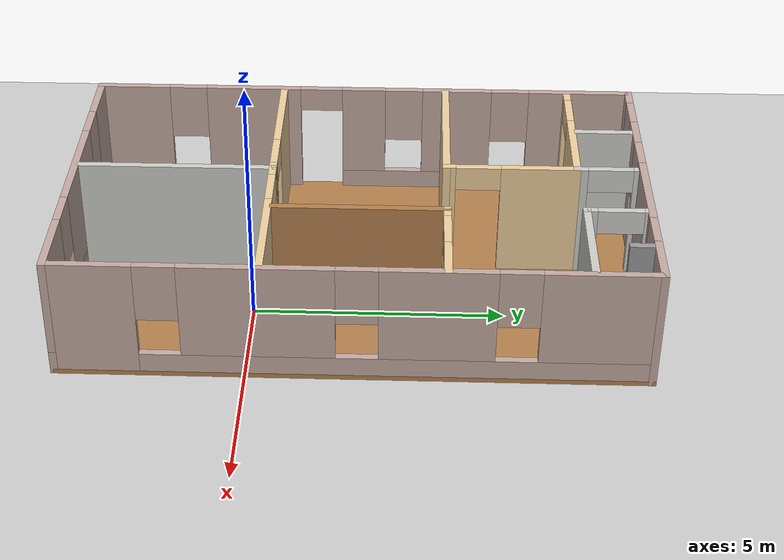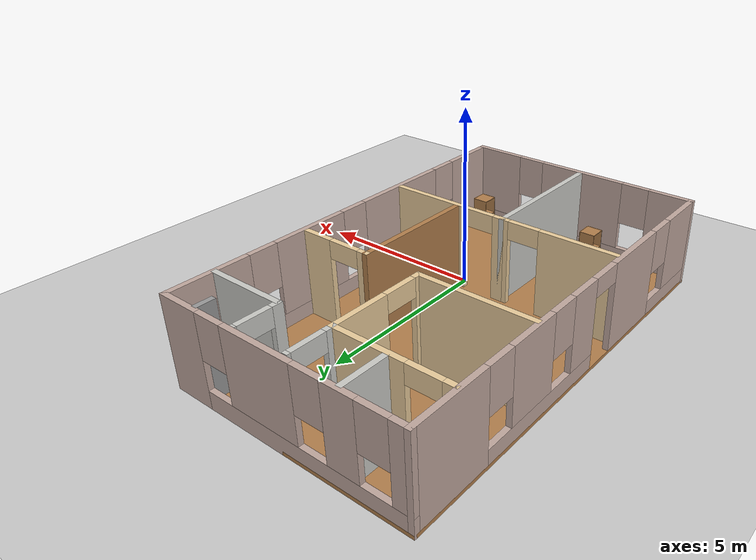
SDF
<sdf version="1.7">
 <world name="default">
  <model name="ground_plane">
   <static>1</static>
   <link name="link">
    <collision name="collision">
     <geometry><plane><normal>0 0 1</normal><size>100 100</size></plane></geometry>
     <surface>
      <contact><collide_bitmask>65535</collide_bitmask></contact>
      <friction><ode><mu>100</mu><mu2>50</mu2></ode></friction>
     </surface>
    </collision>
    <visual name="visual">
     <cast_shadows>0</cast_shadows>
     <geometry><plane><normal>0 0 1</normal><size>100 100</size></plane></geometry>
     <material>
      <script><uri>file://media/materials/scripts/gazebo.material</uri><name>Gazebo/Grey</name></script>
     </material>
    </visual>
   </link>
  </model>
  <model name="Building">
   <pose>4.53978 2.04826 0 0 -0 0</pose>
   <link name="Floor_1">
    <collision name="Floor_1_Collision">
     <geometry><box><size>7 11.5 0.1</size></box></geometry>
     <pose>0 0 0.05 0 -0 0</pose>
    </collision>
    <visual name="Floor_1_Visual">
     <pose>0 0 0.05 0 -0 0</pose>
     <geometry><box><size>7 11.5 0.1</size></box></geometry>
     <material>
      <script><uri>file://media/materials/scripts/gazebo.material</uri><name>Gazebo/Wood</name></script>
      <ambient>1 1 1 1</ambient>
     </material>
     <meta><layer>0</layer></meta>
    </visual>
    <pose>-5.89589 0 0 0 -0 0</pose>
   </link>
   <link name="Wall_21">
    <pose>-9.32067 -0.000135 0 0 -0 -1.5708</pose>
    <visual name="Wall_21_Visual_0">
     <pose>-4.651 0 1.25 0 -0 0</pose>
     <geometry><box><size>2.19799 0.15 2.5</size></box></geometry>
     <material>
      <script><uri>file://media/materials/scripts/gazebo.material</uri><name>Gazebo/Grey</name></script>
      <ambient>0.760784 0.662745 0.627451 1</ambient>
     </material>
     <meta><layer>0</layer></meta>
    </visual>
    <collision name="Wall_21_Collision_0">
     <geometry><box><size>2.19799 0.15 2.5</size></box></geometry>
     <pose>-4.651 0 1.25 0 -0 0</pose>
    </collision>
    <visual name="Wall_21_Visual_1">
     <pose>2.37299 0 1.25 0 -0 0</pose>
     <geometry><box><size>2.03 0.15 2.5</size></box></geometry>
     <material>
      <script><uri>file://media/materials/scripts/gazebo.material</uri><name>Gazebo/Grey</name></script>
      <ambient>0.760784 0.662745 0.627451 1</ambient>
     </material>
     <meta><layer>0</layer></meta>
    </visual>
    <collision name="Wall_21_Collision_1">
     <geometry><box><size>2.03 0.15 2.5</size></box></geometry>
     <pose>2.37299 0 1.25 0 -0 0</pose>
    </collision>
    <visual name="Wall_21_Visual_2">
     <pose>-1.54701 0 0.25 0 -0 0</pose>
     <geometry><box><size>4.01 0.15 0.5</size></box></geometry>
     <material>
      <script><uri>file://media/materials/scripts/gazebo.material</uri><name>Gazebo/Grey</name></script>
      <ambient>0.760784 0.662745 0.627451 1</ambient>
     </material>
     <meta><layer>0</layer></meta>
    </visual>
    <collision name="Wall_21_Collision_2">
     <geometry><box><size>4.01 0.15 0.5</size></box></geometry>
     <pose>-1.54701 0 0.25 0 -0 0</pose>
    </collision>
    <visual name="Wall_21_Visual_3">
     <pose>4.569 0 0.25 0 -0 0</pose>
     <geometry><box><size>2.36201 0.15 0.5</size></box></geometry>
     <material>
      <script><uri>file://media/materials/scripts/gazebo.material</uri><name>Gazebo/Grey</name></script>
      <ambient>0.760784 0.662745 0.627451 1</ambient>
     </material>
     <meta><layer>0</layer></meta>
    </visual>
    <collision name="Wall_21_Collision_3">
     <geometry><box><size>2.36201 0.15 0.5</size></box></geometry>
     <pose>4.569 0 0.25 0 -0 0</pose>
    </collision>
    <visual name="Wall_21_Visual_4">
     <pose>-2.01201 0 1.5 0 -0 0</pose>
     <geometry><box><size>1.48 0.15 2</size></box></geometry>
     <material>
      <script><uri>file://media/materials/scripts/gazebo.material</uri><name>Gazebo/Grey</name></script>
      <ambient>0.760784 0.662745 0.627451 1</ambient>
     </material>
     <meta><layer>0</layer></meta>
    </visual>
    <collision name="Wall_21_Collision_4">
     <geometry><box><size>1.48 0.15 2</size></box></geometry>
     <pose>-2.01201 0 1.5 0 -0 0</pose>
    </collision>
    <visual name="Wall_21_Visual_5">
     <pose>-0.007008 0 1.5 0 -0 0</pose>
     <geometry><box><size>0.93 0.15 2</size></box></geometry>
     <material>
      <script><uri>file://media/materials/scripts/gazebo.material</uri><name>Gazebo/Grey</name></script>
      <ambient>0.760784 0.662745 0.627451 1</ambient>
     </material>
     <meta><layer>0</layer></meta>
    </visual>
    <collision name="Wall_21_Collision_5">
     <geometry><box><size>0.93 0.15 2</size></box></geometry>
     <pose>-0.007008 0 1.5 0 -0 0</pose>
    </collision>
    <visual name="Wall_21_Visual_6">
     <pose>-0.007008 0 1.5 0 -0 0</pose>
     <geometry><box><size>0.93 0.15 2</size></box></geometry>
     <material>
      <script><uri>file://media/materials/scripts/gazebo.material</uri><name>Gazebo/Grey</name></script>
      <ambient>0.760784 0.662745 0.627451 1</ambient>
     </material>
     <meta><layer>0</layer></meta>
    </visual>
    <collision name="Wall_21_Collision_6">
     <geometry><box><size>0.93 0.15 2</size></box></geometry>
     <pose>-0.007008 0 1.5 0 -0 0</pose>
    </collision>
    <visual name="Wall_21_Visual_7">
     <pose>4.969 0 1.5 0 -0 0</pose>
     <geometry><box><size>1.56201 0.15 2</size></box></geometry>
     <material>
      <script><uri>file://media/materials/scripts/gazebo.material</uri><name>Gazebo/Grey</name></script>
      <ambient>0.760784 0.662745 0.627451 1</ambient>
     </material>
     <meta><layer>0</layer></meta>
    </visual>
    <collision name="Wall_21_Collision_7">
     <geometry><box><size>1.56201 0.15 2</size></box></geometry>
     <pose>4.969 0 1.5 0 -0 0</pose>
    </collision>
    <visual name="Wall_21_Visual_8">
     <pose>-3.15201 0 1.9 0 -0 0</pose>
     <geometry><box><size>0.8 0.15 1.2</size></box></geometry>
     <material>
      <script><uri>file://media/materials/scripts/gazebo.material</uri><name>Gazebo/Grey</name></script>
      <ambient>0.760784 0.662745 0.627451 1</ambient>
     </material>
     <meta><layer>0</layer></meta>
    </visual>
    <collision name="Wall_21_Collision_8">
     <geometry><box><size>0.8 0.15 1.2</size></box></geometry>
     <pose>-3.15201 0 1.9 0 -0 0</pose>
    </collision>
    <visual name="Wall_21_Visual_9">
     <pose>3.78799 0 1.9 0 -0 0</pose>
     <geometry><box><size>0.8 0.15 1.2</size></box></geometry>
     <material>
      <script><uri>file://media/materials/scripts/gazebo.material</uri><name>Gazebo/Grey</name></script>
      <ambient>0.760784 0.662745 0.627451 1</ambient>
     </material>
     <meta><layer>0</layer></meta>
    </visual>
    <collision name="Wall_21_Collision_9">
     <geometry><box><size>0.8 0.15 1.2</size></box></geometry>
     <pose>3.78799 0 1.9 0 -0 0</pose>
    </collision>
    <visual name="Wall_21_Visual_10">
     <pose>-0.872008 0 1.9 0 -0 0</pose>
     <geometry><box><size>0.8 0.15 1.2</size></box></geometry>
     <material>
      <script><uri>file://media/materials/scripts/gazebo.material</uri><name>Gazebo/Grey</name></script>
      <ambient>0.760784 0.662745 0.627451 1</ambient>
     </material>
     <meta><layer>0</layer></meta>
    </visual>
    <collision name="Wall_21_Collision_10">
     <geometry><box><size>0.8 0.15 1.2</size></box></geometry>
     <pose>-0.872008 0 1.9 0 -0 0</pose>
    </collision>
    <visual name="Wall_21_Visual_11">
     <pose>0.907992 0 2.25 0 -0 0</pose>
     <geometry><box><size>0.9 0.15 0.5</size></box></geometry>
     <material>
      <script><uri>file://media/materials/scripts/gazebo.material</uri><name>Gazebo/Grey</name></script>
      <ambient>0.760784 0.662745 0.627451 1</ambient>
     </material>
     <meta><layer>0</layer></meta>
    </visual>
    <collision name="Wall_21_Collision_11">
     <geometry><box><size>0.9 0.15 0.5</size></box></geometry>
     <pose>0.907992 0 2.25 0 -0 0</pose>
    </collision>
    <visual name="Wall_21_Visual_12">
     <pose>0.907992 0 2.25 0 -0 0</pose>
     <geometry><box><size>0.9 0.15 0.5</size></box></geometry>
     <material>
      <script><uri>file://media/materials/scripts/gazebo.material</uri><name>Gazebo/Grey</name></script>
      <ambient>0.760784 0.662745 0.627451 1</ambient>
     </material>
     <meta><layer>0</layer></meta>
    </visual>
    <collision name="Wall_21_Collision_12">
     <geometry><box><size>0.9 0.15 0.5</size></box></geometry>
     <pose>0.907992 0 2.25 0 -0 0</pose>
    </collision>
   </link>
   <link name="Wall_22">
    <pose>-5.89589 -5.675 0 0 -0 3.9e-05</pose>
    <visual name="Wall_22_Visual_0">
     <pose>-2.8683 0 1.25 0 -0 0</pose>
     <geometry><box><size>1.2634 0.15 2.5</size></box></geometry>
     <material>
      <script><uri>file://media/materials/scripts/gazebo.material</uri><name>Gazebo/Grey</name></script>
      <ambient>0.760784 0.662745 0.627451 1</ambient>
     </material>
     <meta><layer>0</layer></meta>
    </visual>
    <collision name="Wall_22_Collision_0">
     <geometry><box><size>1.2634 0.15 2.5</size></box></geometry>
     <pose>-2.8683 0 1.25 0 -0 0</pose>
    </collision>
    <visual name="Wall_22_Visual_1">
     <pose>0.631699 0 0.25 0 -0 0</pose>
     <geometry><box><size>5.7366 0.15 0.5</size></box></geometry>
     <material>
      <script><uri>file://media/materials/scripts/gazebo.material</uri><name>Gazebo/Grey</name></script>
      <ambient>0.760784 0.662745 0.627451 1</ambient>
     </material>
     <meta><layer>0</layer></meta>
    </visual>
    <collision name="Wall_22_Collision_1">
     <geometry><box><size>5.7366 0.15 0.5</size></box></geometry>
     <pose>0.631699 0 0.25 0 -0 0</pose>
    </collision>
    <visual name="Wall_22_Visual_2">
     <pose>-0.136711 0 1.5 0 -0 0</pose>
     <geometry><box><size>2.59978 0.15 2</size></box></geometry>
     <material>
      <script><uri>file://media/materials/scripts/gazebo.material</uri><name>Gazebo/Grey</name></script>
      <ambient>0.760784 0.662745 0.627451 1</ambient>
     </material>
     <meta><layer>0</layer></meta>
    </visual>
    <collision name="Wall_22_Collision_2">
     <geometry><box><size>2.59978 0.15 2</size></box></geometry>
     <pose>-0.136711 0 1.5 0 -0 0</pose>
    </collision>
    <visual name="Wall_22_Visual_3">
     <pose>2.73159 0 1.5 0 -0 0</pose>
     <geometry><box><size>1.53682 0.15 2</size></box></geometry>
     <material>
      <script><uri>file://media/materials/scripts/gazebo.material</uri><name>Gazebo/Grey</name></script>
      <ambient>0.760784 0.662745 0.627451 1</ambient>
     </material>
     <meta><layer>0</layer></meta>
    </visual>
    <collision name="Wall_22_Collision_3">
     <geometry><box><size>1.53682 0.15 2</size></box></geometry>
     <pose>2.73159 0 1.5 0 -0 0</pose>
    </collision>
    <visual name="Wall_22_Visual_4">
     <pose>-1.8366 0 1.9 0 -0 0</pose>
     <geometry><box><size>0.8 0.15 1.2</size></box></geometry>
     <material>
      <script><uri>file://media/materials/scripts/gazebo.material</uri><name>Gazebo/Grey</name></script>
      <ambient>0.760784 0.662745 0.627451 1</ambient>
     </material>
     <meta><layer>0</layer></meta>
    </visual>
    <collision name="Wall_22_Collision_4">
     <geometry><box><size>0.8 0.15 1.2</size></box></geometry>
     <pose>-1.8366 0 1.9 0 -0 0</pose>
    </collision>
    <visual name="Wall_22_Visual_5">
     <pose>1.56318 0 1.9 0 -0 0</pose>
     <geometry><box><size>0.8 0.15 1.2</size></box></geometry>
     <material>
      <script><uri>file://media/materials/scripts/gazebo.material</uri><name>Gazebo/Grey</name></script>
      <ambient>0.760784 0.662745 0.627451 1</ambient>
     </material>
     <meta><layer>0</layer></meta>
    </visual>
    <collision name="Wall_22_Collision_5">
     <geometry><box><size>0.8 0.15 1.2</size></box></geometry>
     <pose>1.56318 0 1.9 0 -0 0</pose>
    </collision>
   </link>
   <link name="Wall_23">
    <pose>-2.47111 0.000135 0 0 -0 1.5708</pose>
    <visual name="Wall_23_Visual_0">
     <pose>-4.889 0 1.25 0 -0 0</pose>
     <geometry><box><size>1.72201 0.15 2.5</size></box></geometry>
     <material>
      <script><uri>file://media/materials/scripts/gazebo.material</uri><name>Gazebo/Grey</name></script>
      <ambient>0.760784 0.662745 0.627451 1</ambient>
     </material>
     <meta><layer>0</layer></meta>
    </visual>
    <collision name="Wall_23_Collision_0">
     <geometry><box><size>1.72201 0.15 2.5</size></box></geometry>
     <pose>-4.889 0 1.25 0 -0 0</pose>
    </collision>
    <visual name="Wall_23_Visual_1">
     <pose>0.861004 0 0.25 0 -0 0</pose>
     <geometry><box><size>9.77799 0.15 0.5</size></box></geometry>
     <material>
      <script><uri>file://media/materials/scripts/gazebo.material</uri><name>Gazebo/Grey</name></script>
      <ambient>0.760784 0.662745 0.627451 1</ambient>
     </material>
     <meta><layer>0</layer></meta>
    </visual>
    <collision name="Wall_23_Collision_1">
     <geometry><box><size>9.77799 0.15 0.5</size></box></geometry>
     <pose>0.861004 0 0.25 0 -0 0</pose>
    </collision>
    <visual name="Wall_23_Visual_2">
     <pose>-1.76799 0 1.5 0 -0 0</pose>
     <geometry><box><size>2.92 0.15 2</size></box></geometry>
     <material>
      <script><uri>file://media/materials/scripts/gazebo.material</uri><name>Gazebo/Grey</name></script>
      <ambient>0.760784 0.662745 0.627451 1</ambient>
     </material>
     <meta><layer>0</layer></meta>
    </visual>
    <collision name="Wall_23_Collision_2">
     <geometry><box><size>2.92 0.15 2</size></box></geometry>
     <pose>-1.76799 0 1.5 0 -0 0</pose>
    </collision>
    <visual name="Wall_23_Visual_3">
     <pose>1.59201 0 1.5 0 -0 0</pose>
     <geometry><box><size>2.2 0.15 2</size></box></geometry>
     <material>
      <script><uri>file://media/materials/scripts/gazebo.material</uri><name>Gazebo/Grey</name></script>
      <ambient>0.760784 0.662745 0.627451 1</ambient>
     </material>
     <meta><layer>0</layer></meta>
    </visual>
    <collision name="Wall_23_Collision_3">
     <geometry><box><size>2.2 0.15 2</size></box></geometry>
     <pose>1.59201 0 1.5 0 -0 0</pose>
    </collision>
    <visual name="Wall_23_Visual_4">
     <pose>4.621 0 1.5 0 -0 0</pose>
     <geometry><box><size>2.25799 0.15 2</size></box></geometry>
     <material>
      <script><uri>file://media/materials/scripts/gazebo.material</uri><name>Gazebo/Grey</name></script>
      <ambient>0.760784 0.662745 0.627451 1</ambient>
     </material>
     <meta><layer>0</layer></meta>
    </visual>
    <collision name="Wall_23_Collision_4">
     <geometry><box><size>2.25799 0.15 2</size></box></geometry>
     <pose>4.621 0 1.5 0 -0 0</pose>
    </collision>
    <visual name="Wall_23_Visual_5">
     <pose>-3.62799 0 1.9 0 -0 0</pose>
     <geometry><box><size>0.8 0.15 1.2</size></box></geometry>
     <material>
      <script><uri>file://media/materials/scripts/gazebo.material</uri><name>Gazebo/Grey</name></script>
      <ambient>0.760784 0.662745 0.627451 1</ambient>
     </material>
     <meta><layer>0</layer></meta>
    </visual>
    <collision name="Wall_23_Collision_5">
     <geometry><box><size>0.8 0.15 1.2</size></box></geometry>
     <pose>-3.62799 0 1.9 0 -0 0</pose>
    </collision>
    <visual name="Wall_23_Visual_6">
     <pose>0.092008 0 1.9 0 -0 0</pose>
     <geometry><box><size>0.8 0.15 1.2</size></box></geometry>
     <material>
      <script><uri>file://media/materials/scripts/gazebo.material</uri><name>Gazebo/Grey</name></script>
      <ambient>0.760784 0.662745 0.627451 1</ambient>
     </material>
     <meta><layer>0</layer></meta>
    </visual>
    <collision name="Wall_23_Collision_6">
     <geometry><box><size>0.8 0.15 1.2</size></box></geometry>
     <pose>0.092008 0 1.9 0 -0 0</pose>
    </collision>
    <visual name="Wall_23_Visual_7">
     <pose>3.09201 0 1.9 0 -0 0</pose>
     <geometry><box><size>0.8 0.15 1.2</size></box></geometry>
     <material>
      <script><uri>file://media/materials/scripts/gazebo.material</uri><name>Gazebo/Grey</name></script>
      <ambient>0.760784 0.662745 0.627451 1</ambient>
     </material>
     <meta><layer>0</layer></meta>
    </visual>
    <collision name="Wall_23_Collision_7">
     <geometry><box><size>0.8 0.15 1.2</size></box></geometry>
     <pose>3.09201 0 1.9 0 -0 0</pose>
    </collision>
   </link>
   <link name="Wall_24">
    <pose>-5.89589 5.675 0 0 -0 -3.14155</pose>
    <visual name="Wall_24_Visual_0">
     <pose>-2.90158 0 1.25 0 -0 0</pose>
     <geometry><box><size>1.19684 0.15 2.5</size></box></geometry>
     <material>
      <script><uri>file://media/materials/scripts/gazebo.material</uri><name>Gazebo/Grey</name></script>
      <ambient>0.760784 0.662745 0.627451 1</ambient>
     </material>
     <meta><layer>0</layer></meta>
    </visual>
    <collision name="Wall_24_Collision_0">
     <geometry><box><size>1.19684 0.15 2.5</size></box></geometry>
     <pose>-2.90158 0 1.25 0 -0 0</pose>
    </collision>
    <visual name="Wall_24_Visual_1">
     <pose>0.59842 0 0.25 0 -0 0</pose>
     <geometry><box><size>5.80316 0.15 0.5</size></box></geometry>
     <material>
      <script><uri>file://media/materials/scripts/gazebo.material</uri><name>Gazebo/Grey</name></script>
      <ambient>0.760784 0.662745 0.627451 1</ambient>
     </material>
     <meta><layer>0</layer></meta>
    </visual>
    <collision name="Wall_24_Collision_1">
     <geometry><box><size>5.80316 0.15 0.5</size></box></geometry>
     <pose>0.59842 0 0.25 0 -0 0</pose>
    </collision>
    <visual name="Wall_24_Visual_2">
     <pose>-0.48325 0 1.5 0 -0 0</pose>
     <geometry><box><size>2.03982 0.15 2</size></box></geometry>
     <material>
      <script><uri>file://media/materials/scripts/gazebo.material</uri><name>Gazebo/Grey</name></script>
      <ambient>0.760784 0.662745 0.627451 1</ambient>
     </material>
     <meta><layer>0</layer></meta>
    </visual>
    <collision name="Wall_24_Collision_2">
     <geometry><box><size>2.03982 0.15 2</size></box></geometry>
     <pose>-0.48325 0 1.5 0 -0 0</pose>
    </collision>
    <visual name="Wall_24_Visual_3">
     <pose>1.76661 0 1.5 0 -0 0</pose>
     <geometry><box><size>0.859895 0.15 2</size></box></geometry>
     <material>
      <script><uri>file://media/materials/scripts/gazebo.material</uri><name>Gazebo/Grey</name></script>
      <ambient>0.760784 0.662745 0.627451 1</ambient>
     </material>
     <meta><layer>0</layer></meta>
    </visual>
    <collision name="Wall_24_Collision_3">
     <geometry><box><size>0.859895 0.15 2</size></box></geometry>
     <pose>1.76661 0 1.5 0 -0 0</pose>
    </collision>
    <visual name="Wall_24_Visual_4">
     <pose>3.24828 0 1.5 0 -0 0</pose>
     <geometry><box><size>0.503445 0.15 2</size></box></geometry>
     <material>
      <script><uri>file://media/materials/scripts/gazebo.material</uri><name>Gazebo/Grey</name></script>
      <ambient>0.760784 0.662745 0.627451 1</ambient>
     </material>
     <meta><layer>0</layer></meta>
    </visual>
    <collision name="Wall_24_Collision_4">
     <geometry><box><size>0.503445 0.15 2</size></box></geometry>
     <pose>3.24828 0 1.5 0 -0 0</pose>
    </collision>
    <visual name="Wall_24_Visual_5">
     <pose>-1.90316 0 1.9 0 -0 0</pose>
     <geometry><box><size>0.8 0.15 1.2</size></box></geometry>
     <material>
      <script><uri>file://media/materials/scripts/gazebo.material</uri><name>Gazebo/Grey</name></script>
      <ambient>0.760784 0.662745 0.627451 1</ambient>
     </material>
     <meta><layer>0</layer></meta>
    </visual>
    <collision name="Wall_24_Collision_5">
     <geometry><box><size>0.8 0.15 1.2</size></box></geometry>
     <pose>-1.90316 0 1.9 0 -0 0</pose>
    </collision>
    <visual name="Wall_24_Visual_6">
     <pose>0.93666 0 1.9 0 -0 0</pose>
     <geometry><box><size>0.8 0.15 1.2</size></box></geometry>
     <material>
      <script><uri>file://media/materials/scripts/gazebo.material</uri><name>Gazebo/Grey</name></script>
      <ambient>0.760784 0.662745 0.627451 1</ambient>
     </material>
     <meta><layer>0</layer></meta>
    </visual>
    <collision name="Wall_24_Collision_6">
     <geometry><box><size>0.8 0.15 1.2</size></box></geometry>
     <pose>0.93666 0 1.9 0 -0 0</pose>
    </collision>
    <visual name="Wall_24_Visual_7">
     <pose>2.59655 0 1.9 0 -0 0</pose>
     <geometry><box><size>0.8 0.15 1.2</size></box></geometry>
     <material>
      <script><uri>file://media/materials/scripts/gazebo.material</uri><name>Gazebo/Grey</name></script>
      <ambient>0.760784 0.662745 0.627451 1</ambient>
     </material>
     <meta><layer>0</layer></meta>
    </visual>
    <collision name="Wall_24_Collision_7">
     <geometry><box><size>0.8 0.15 1.2</size></box></geometry>
     <pose>2.59655 0 1.9 0 -0 0</pose>
    </collision>
   </link>
   <link name="Wall_25">
    <collision name="Wall_25_Collision">
     <geometry><box><size>4 0.15 2.5</size></box></geometry>
     <pose>0 0 1.25 0 -0 0</pose>
    </collision>
    <visual name="Wall_25_Visual">
     <pose>0 0 1.25 0 -0 0</pose>
     <geometry><box><size>4 0.15 2.5</size></box></geometry>
     <material>
      <script><uri>file://media/materials/scripts/gazebo.material</uri><name>Gazebo/CeilingTiled</name></script>
      <ambient>0.921569 0.807843 0.615686 1</ambient>
     </material>
     <meta><layer>0</layer></meta>
    </visual>
    <pose>-5.99543 -3.63145 0 0 -0 1.5708</pose>
   </link>
   <link name="Wall_26">
    <pose>-7.59543 -1.70645 0 0 -0 3.14159</pose>
    <visual name="Wall_26_Visual_0">
     <pose>-1.53402 0 1.25 0 -0 0</pose>
     <geometry><box><size>0.281963 0.15 2.5</size></box></geometry>
     <material>
      <script><uri>file://media/materials/scripts/gazebo.material</uri><name>Gazebo/Grey</name></script>
      <ambient>0.921569 0.807843 0.615686 1</ambient>
     </material>
     <meta><layer>0</layer></meta>
    </visual>
    <collision name="Wall_26_Collision_0">
     <geometry><box><size>0.281963 0.15 2.5</size></box></geometry>
     <pose>-1.53402 0 1.25 0 -0 0</pose>
    </collision>
    <visual name="Wall_26_Visual_1">
     <pose>0.590981 0 1.25 0 -0 0</pose>
     <geometry><box><size>2.16804 0.15 2.5</size></box></geometry>
     <material>
      <script><uri>file://media/materials/scripts/gazebo.material</uri><name>Gazebo/Grey</name></script>
      <ambient>0.921569 0.807843 0.615686 1</ambient>
     </material>
     <meta><layer>0</layer></meta>
    </visual>
    <collision name="Wall_26_Collision_1">
     <geometry><box><size>2.16804 0.15 2.5</size></box></geometry>
     <pose>0.590981 0 1.25 0 -0 0</pose>
    </collision>
    <visual name="Wall_26_Visual_2">
     <pose>-0.943037 0 2.25 0 -0 0</pose>
     <geometry><box><size>0.9 0.15 0.5</size></box></geometry>
     <material>
      <script><uri>file://media/materials/scripts/gazebo.material</uri><name>Gazebo/Grey</name></script>
      <ambient>0.921569 0.807843 0.615686 1</ambient>
     </material>
     <meta><layer>0</layer></meta>
    </visual>
    <collision name="Wall_26_Collision_2">
     <geometry><box><size>0.9 0.15 0.5</size></box></geometry>
     <pose>-0.943037 0 2.25 0 -0 0</pose>
    </collision>
   </link>
   <link name="Wall_27">
    <pose>-4.29543 -1.70645 0 0 -0 0</pose>
    <visual name="Wall_27_Visual_0">
     <pose>-1.60098 0 1.25 0 -0 0</pose>
     <geometry><box><size>0.348037 0.15 2.5</size></box></geometry>
     <material>
      <script><uri>file://media/materials/scripts/gazebo.material</uri><name>Gazebo/Grey</name></script>
      <ambient>0.921569 0.807843 0.615686 1</ambient>
     </material>
     <meta><layer>0</layer></meta>
    </visual>
    <collision name="Wall_27_Collision_0">
     <geometry><box><size>0.348037 0.15 2.5</size></box></geometry>
     <pose>-1.60098 0 1.25 0 -0 0</pose>
    </collision>
    <visual name="Wall_27_Visual_1">
     <pose>0.624018 0 1.25 0 -0 0</pose>
     <geometry><box><size>2.30196 0.15 2.5</size></box></geometry>
     <material>
      <script><uri>file://media/materials/scripts/gazebo.material</uri><name>Gazebo/Grey</name></script>
      <ambient>0.921569 0.807843 0.615686 1</ambient>
     </material>
     <meta><layer>0</layer></meta>
    </visual>
    <collision name="Wall_27_Collision_1">
     <geometry><box><size>2.30196 0.15 2.5</size></box></geometry>
     <pose>0.624018 0 1.25 0 -0 0</pose>
    </collision>
    <visual name="Wall_27_Visual_2">
     <pose>-0.976963 0 2.25 0 -0 0</pose>
     <geometry><box><size>0.9 0.15 0.5</size></box></geometry>
     <material>
      <script><uri>file://media/materials/scripts/gazebo.material</uri><name>Gazebo/Grey</name></script>
      <ambient>0.921569 0.807843 0.615686 1</ambient>
     </material>
     <meta><layer>0</layer></meta>
    </visual>
    <collision name="Wall_27_Collision_2">
     <geometry><box><size>0.9 0.15 0.5</size></box></geometry>
     <pose>-0.976963 0 2.25 0 -0 0</pose>
    </collision>
   </link>
   <link name="Wall_29">
    <pose>-7.70013 4.35813 0 0 -0 0</pose>
    <visual name="Wall_29_Visual_0">
     <pose>-1.45363 0 1.25 0 -0 0</pose>
     <geometry><box><size>0.342742 0.15 2.5</size></box></geometry>
     <material>
      <script><uri>file://media/materials/scripts/gazebo.material</uri><name>Gazebo/Grey</name></script>
      <ambient>0.921569 0.807843 0.615686 1</ambient>
     </material>
     <meta><layer>0</layer></meta>
    </visual>
    <collision name="Wall_29_Collision_0">
     <geometry><box><size>0.342742 0.15 2.5</size></box></geometry>
     <pose>-1.45363 0 1.25 0 -0 0</pose>
    </collision>
    <visual name="Wall_29_Visual_1">
     <pose>0.621371 0 1.25 0 -0 0</pose>
     <geometry><box><size>2.00726 0.15 2.5</size></box></geometry>
     <material>
      <script><uri>file://media/materials/scripts/gazebo.material</uri><name>Gazebo/Grey</name></script>
      <ambient>0.921569 0.807843 0.615686 1</ambient>
     </material>
     <meta><layer>0</layer></meta>
    </visual>
    <collision name="Wall_29_Collision_1">
     <geometry><box><size>2.00726 0.15 2.5</size></box></geometry>
     <pose>0.621371 0 1.25 0 -0 0</pose>
    </collision>
    <visual name="Wall_29_Visual_2">
     <pose>-0.832258 0 2.25 0 -0 0</pose>
     <geometry><box><size>0.9 0.15 0.5</size></box></geometry>
     <material>
      <script><uri>file://media/materials/scripts/gazebo.material</uri><name>Gazebo/Grey</name></script>
      <ambient>0.921569 0.807843 0.615686 1</ambient>
     </material>
     <meta><layer>0</layer></meta>
    </visual>
    <collision name="Wall_29_Collision_2">
     <geometry><box><size>0.9 0.15 0.5</size></box></geometry>
     <pose>-0.832258 0 2.25 0 -0 0</pose>
    </collision>
   </link>
   <link name="Wall_30">
    <pose>-6.15013 3.05813 0 0 -0 -1.5708</pose>
    <visual name="Wall_30_Visual_0">
     <pose>-0.57937 0 1.25 0 -0 0</pose>
     <geometry><box><size>1.59126 0.15 2.5</size></box></geometry>
     <material>
      <script><uri>file://media/materials/scripts/gazebo.material</uri><name>Gazebo/Grey</name></script>
      <ambient>0.921569 0.807843 0.615686 1</ambient>
     </material>
     <meta><layer>0</layer></meta>
    </visual>
    <collision name="Wall_30_Collision_0">
     <geometry><box><size>1.59126 0.15 2.5</size></box></geometry>
     <pose>-0.57937 0 1.25 0 -0 0</pose>
    </collision>
    <visual name="Wall_30_Visual_1">
     <pose>1.24563 0 1.25 0 -0 0</pose>
     <geometry><box><size>0.25874 0.15 2.5</size></box></geometry>
     <material>
      <script><uri>file://media/materials/scripts/gazebo.material</uri><name>Gazebo/Grey</name></script>
      <ambient>0.921569 0.807843 0.615686 1</ambient>
     </material>
     <meta><layer>0</layer></meta>
    </visual>
    <collision name="Wall_30_Collision_1">
     <geometry><box><size>0.25874 0.15 2.5</size></box></geometry>
     <pose>1.24563 0 1.25 0 -0 0</pose>
    </collision>
    <visual name="Wall_30_Visual_2">
     <pose>0.66626 0 2.25 0 -0 0</pose>
     <geometry><box><size>0.9 0.15 0.5</size></box></geometry>
     <material>
      <script><uri>file://media/materials/scripts/gazebo.material</uri><name>Gazebo/Grey</name></script>
      <ambient>0.921569 0.807843 0.615686 1</ambient>
     </material>
     <meta><layer>0</layer></meta>
    </visual>
    <collision name="Wall_30_Collision_2">
     <geometry><box><size>0.9 0.15 0.5</size></box></geometry>
     <pose>0.66626 0 2.25 0 -0 0</pose>
    </collision>
   </link>
   <link name="Wall_31">
    <collision name="Wall_31_Collision">
     <geometry><box><size>3.25 0.15 2.5</size></box></geometry>
     <pose>0 0 1.25 0 -0 0</pose>
    </collision>
    <visual name="Wall_31_Visual">
     <pose>0 0 1.25 0 -0 0</pose>
     <geometry><box><size>3.25 0.15 2.5</size></box></geometry>
     <material>
      <script><uri>file://media/materials/scripts/gazebo.material</uri><name>Gazebo/Grey</name></script>
      <ambient>0.921569 0.807843 0.615686 1</ambient>
     </material>
     <meta><layer>0</layer></meta>
    </visual>
    <pose>-7.70013 1.75813 0 0 -0 3.14159</pose>
   </link>
   <link name="Wall_33">
    <collision name="Wall_33_Collision">
     <geometry><box><size>1.25 0.15 2.5</size></box></geometry>
     <pose>0 0 1.25 0 -0 0</pose>
    </collision>
    <visual name="Wall_33_Visual">
     <pose>0 0 1.25 0 -0 0</pose>
     <geometry><box><size>1.25 0.15 2.5</size></box></geometry>
     <material>
      <script><uri>file://media/materials/scripts/gazebo.material</uri><name>Gazebo/CeilingTiled</name></script>
      <ambient>0.921569 0.807843 0.615686 1</ambient>
     </material>
     <meta><layer>0</layer></meta>
    </visual>
    <pose>-7.64013 5.02713 0 0 -0 -1.5708</pose>
   </link>
   <link name="Wall_37">
    <pose>-6.15013 4.93313 0 0 -0 1.5708</pose>
    <visual name="Wall_37_Visual_0">
     <pose>-0.50063 0 1.25 0 -0 0</pose>
     <geometry><box><size>0.29874 0.15 2.5</size></box></geometry>
     <material>
      <script><uri>file://media/materials/scripts/gazebo.material</uri><name>Gazebo/CeilingTiled</name></script>
      <ambient>0.921569 0.807843 0.615686 1</ambient>
     </material>
     <meta><layer>0</layer></meta>
    </visual>
    <collision name="Wall_37_Collision_0">
     <geometry><box><size>0.29874 0.15 2.5</size></box></geometry>
     <pose>-0.50063 0 1.25 0 -0 0</pose>
    </collision>
    <visual name="Wall_37_Visual_1">
     <pose>0.59937 0 1.25 0 -0 0</pose>
     <geometry><box><size>0.10126 0.15 2.5</size></box></geometry>
     <material>
      <script><uri>file://media/materials/scripts/gazebo.material</uri><name>Gazebo/CeilingTiled</name></script>
      <ambient>0.921569 0.807843 0.615686 1</ambient>
     </material>
     <meta><layer>0</layer></meta>
    </visual>
    <collision name="Wall_37_Collision_1">
     <geometry><box><size>0.10126 0.15 2.5</size></box></geometry>
     <pose>0.59937 0 1.25 0 -0 0</pose>
    </collision>
    <visual name="Wall_37_Visual_2">
     <pose>0.09874 0 2.25 0 -0 0</pose>
     <geometry><box><size>0.9 0.15 0.5</size></box></geometry>
     <material>
      <script><uri>file://media/materials/scripts/gazebo.material</uri><name>Gazebo/CeilingTiled</name></script>
      <ambient>0.921569 0.807843 0.615686 1</ambient>
     </material>
     <meta><layer>0</layer></meta>
    </visual>
    <collision name="Wall_37_Collision_2">
     <geometry><box><size>0.9 0.15 0.5</size></box></geometry>
     <pose>0.09874 0 2.25 0 -0 0</pose>
    </collision>
   </link>
   <link name="Wall_39">
    <pose>-4.63239 4.98187 0 0 -0 -1.5708</pose>
    <visual name="Wall_39_Visual_0">
     <pose>-0.5925 0 1.25 0 -0 0</pose>
     <geometry><box><size>0.065 0.15 2.5</size></box></geometry>
     <material>
      <script><uri>file://media/materials/scripts/gazebo.material</uri><name>Gazebo/CeilingTiled</name></script>
      <ambient>0.921569 0.807843 0.615686 1</ambient>
     </material>
     <meta><layer>0</layer></meta>
    </visual>
    <collision name="Wall_39_Collision_0">
     <geometry><box><size>0.065 0.15 2.5</size></box></geometry>
     <pose>-0.5925 0 1.25 0 -0 0</pose>
    </collision>
    <visual name="Wall_39_Visual_1">
     <pose>0.4825 0 1.25 0 -0 0</pose>
     <geometry><box><size>0.285 0.15 2.5</size></box></geometry>
     <material>
      <script><uri>file://media/materials/scripts/gazebo.material</uri><name>Gazebo/CeilingTiled</name></script>
      <ambient>0.921569 0.807843 0.615686 1</ambient>
     </material>
     <meta><layer>0</layer></meta>
    </visual>
    <collision name="Wall_39_Collision_1">
     <geometry><box><size>0.285 0.15 2.5</size></box></geometry>
     <pose>0.4825 0 1.25 0 -0 0</pose>
    </collision>
    <visual name="Wall_39_Visual_2">
     <pose>-0.11 0 2.25 0 -0 0</pose>
     <geometry><box><size>0.9 0.15 0.5</size></box></geometry>
     <material>
      <script><uri>file://media/materials/scripts/gazebo.material</uri><name>Gazebo/CeilingTiled</name></script>
      <ambient>0.921569 0.807843 0.615686 1</ambient>
     </material>
     <meta><layer>0</layer></meta>
    </visual>
    <collision name="Wall_39_Collision_2">
     <geometry><box><size>0.9 0.15 0.5</size></box></geometry>
     <pose>-0.11 0 2.25 0 -0 0</pose>
    </collision>
   </link>
   <link name="Wall_40">
    <collision name="Wall_40_Collision">
     <geometry><box><size>2.25 0.15 2.5</size></box></geometry>
     <pose>0 0 1.25 0 -0 0</pose>
    </collision>
    <visual name="Wall_40_Visual">
     <pose>0 0 1.25 0 -0 0</pose>
     <geometry><box><size>2.25 0.15 2.5</size></box></geometry>
     <material>
      <script><uri>file://media/materials/scripts/gazebo.material</uri><name>Gazebo/CeilingTiled</name></script>
      <ambient>0.921569 0.807843 0.615686 1</ambient>
     </material>
     <meta><layer>0</layer></meta>
    </visual>
    <pose>-3.58239 4.43187 0 0 -0 0</pose>
   </link>
   <link name="Wall_42">
    <collision name="Wall_42_Collision">
     <geometry><box><size>0.5 0.15 2.5</size></box></geometry>
     <pose>0 0 1.25 0 -0 0</pose>
    </collision>
    <visual name="Wall_42_Visual">
     <pose>0 0 1.25 0 -0 0</pose>
     <geometry><box><size>0.5 0.15 2.5</size></box></geometry>
     <material>
      <script><uri>file://media/materials/scripts/gazebo.material</uri><name>Gazebo/Grey</name></script>
      <ambient>1 1 1 1</ambient>
     </material>
     <meta><layer>0</layer></meta>
    </visual>
    <pose>-3.43239 5.37687 0 0 -0 -1.5708</pose>
   </link>
   <link name="Wall_44">
    <collision name="Wall_44_Collision">
     <geometry><box><size>3.5 0.15 2.5</size></box></geometry>
     <pose>0 0 1.25 0 -0 0</pose>
    </collision>
    <visual name="Wall_44_Visual">
     <pose>0 0 1.25 0 -0 0</pose>
     <geometry><box><size>3.5 0.15 2.5</size></box></geometry>
     <material>
      <script><uri>file://media/materials/scripts/gazebo.material</uri><name>Gazebo/Wood</name></script>
      <ambient>1 1 1 1</ambient>
     </material>
     <meta><layer>0</layer></meta>
    </visual>
    <pose>-4.57239 0.086873 0 0 -0 1.5708</pose>
   </link>
   <link name="Wall_45">
    <pose>-3.52239 1.76187 0 0 -0 0</pose>
    <visual name="Wall_45_Visual_0">
     <pose>-0.9625 0 1.25 0 -0 0</pose>
     <geometry><box><size>0.325 0.15 2.5</size></box></geometry>
     <material>
      <script><uri>file://media/materials/scripts/gazebo.material</uri><name>Gazebo/Grey</name></script>
      <ambient>0.921569 0.807843 0.615686 1</ambient>
     </material>
     <meta><layer>0</layer></meta>
    </visual>
    <collision name="Wall_45_Collision_0">
     <geometry><box><size>0.325 0.15 2.5</size></box></geometry>
     <pose>-0.9625 0 1.25 0 -0 0</pose>
    </collision>
    <visual name="Wall_45_Visual_1">
     <pose>0.6125 0 1.25 0 -0 0</pose>
     <geometry><box><size>1.025 0.15 2.5</size></box></geometry>
     <material>
      <script><uri>file://media/materials/scripts/gazebo.material</uri><name>Gazebo/Grey</name></script>
      <ambient>0.921569 0.807843 0.615686 1</ambient>
     </material>
     <meta><layer>0</layer></meta>
    </visual>
    <collision name="Wall_45_Collision_1">
     <geometry><box><size>1.025 0.15 2.5</size></box></geometry>
     <pose>0.6125 0 1.25 0 -0 0</pose>
    </collision>
    <visual name="Wall_45_Visual_2">
     <pose>-0.35 0 2.25 0 -0 0</pose>
     <geometry><box><size>0.9 0.15 0.5</size></box></geometry>
     <material>
      <script><uri>file://media/materials/scripts/gazebo.material</uri><name>Gazebo/Grey</name></script>
      <ambient>0.921569 0.807843 0.615686 1</ambient>
     </material>
     <meta><layer>0</layer></meta>
    </visual>
    <collision name="Wall_45_Collision_2">
     <geometry><box><size>0.9 0.15 0.5</size></box></geometry>
     <pose>-0.35 0 2.25 0 -0 0</pose>
    </collision>
   </link>
   <static>1</static>
  </model>
  <model name="cabinet">
   <static>1</static>
   <link name="cabinet_bottom_plate">
    <inertial>
     <pose>0 0 -1 0 -0 0</pose>
     <inertia><ixx>2.05</ixx><ixy>0</ixy><ixz>0</ixz><iyy>2.05</iyy><iyz>0</iyz><izz>2.05</izz></inertia>
     <mass>25</mass>
    </inertial>
    <collision name="cabinet_bottom_plate_geom">
     <pose>0 0 0.01 0 -0 0</pose>
     <geometry><box><size>0.45 0.45 0.02</size></box></geometry>
    </collision>
    <visual name="cabinet_bottom_plate_geom_visual">
     <pose>0 0 0.01 0 -0 0</pose>
     <geometry><box><size>0.45 0.45 0.02</size></box></geometry>
     <material>
      <script><uri>file://media/materials/scripts/gazebo.material</uri><name>Gazebo/Wood</name></script>
     </material>
    </visual>
    <collision name="cabinet_bottom_plate_geom_cabinet_back_plate">
     <pose>0.235 0 0.51 0 -0 0</pose>
     <geometry><box><size>0.02 0.45 1.02</size></box></geometry>
    </collision>
    <visual name="cabinet_bottom_plate_geom_cabinet_back_plate_visual">
     <pose>0.235 0 0.51 0 -0 0</pose>
     <geometry><box><size>0.02 0.45 1.02</size></box></geometry>
     <material>
      <script><uri>file://media/materials/scripts/gazebo.material</uri><name>Gazebo/Wood</name></script>
     </material>
    </visual>
    <collision name="cabinet_bottom_plate_geom_cabinet_left_plate">
     <pose>0 0.235 0.51 0 -0 0</pose>
     <geometry><box><size>0.45 0.02 1.02</size></box></geometry>
    </collision>
    <visual name="cabinet_bottom_plate_geom_cabinet_left_plate_visual">
     <pose>0 0.235 0.51 0 -0 0</pose>
     <geometry><box><size>0.45 0.02 1.02</size></box></geometry>
     <material>
      <script><uri>file://media/materials/scripts/gazebo.material</uri><name>Gazebo/Wood</name></script>
     </material>
    </visual>
    <collision name="cabinet_bottom_plate_geom_cabinet_middle_plate">
     <pose>0 0 0.51 0 -0 0</pose>
     <geometry><box><size>0.45 0.45 0.02</size></box></geometry>
    </collision>
    <visual name="cabinet_bottom_plate_geom_cabinet_middle_plate_visual">
     <pose>0 0 0.51 0 -0 0</pose>
     <geometry><box><size>0.45 0.45 0.02</size></box></geometry>
     <material>
      <script><uri>file://media/materials/scripts/gazebo.material</uri><name>Gazebo/Wood</name></script>
     </material>
    </visual>
    <collision name="cabinet_bottom_plate_geom_cabinet_right_plate">
     <pose>0 -0.235 0.51 0 -0 0</pose>
     <geometry><box><size>0.45 0.02 1.02</size></box></geometry>
    </collision>
    <visual name="cabinet_bottom_plate_geom_cabinet_right_plate_visual">
     <pose>0 -0.235 0.51 0 -0 0</pose>
     <geometry><box><size>0.45 0.02 1.02</size></box></geometry>
     <material>
      <script><uri>file://media/materials/scripts/gazebo.material</uri><name>Gazebo/Wood</name></script>
     </material>
    </visual>
    <collision name="cabinet_bottom_plate_geom_cabinet_top_plate">
     <pose>0 0 1.01 0 -0 0</pose>
     <geometry><box><size>0.45 0.45 0.02</size></box></geometry>
    </collision>
    <visual name="cabinet_bottom_plate_geom_cabinet_top_plate_visual">
     <pose>0 0 1.01 0 -0 0</pose>
     <geometry><box><size>0.45 0.45 0.02</size></box></geometry>
     <material>
      <script><uri>file://media/materials/scripts/gazebo.material</uri><name>Gazebo/Wood</name></script>
     </material>
    </visual>
   </link>
   <pose>1.62611 -3.15166 0 0 -0 0</pose>
  </model>
  <model name="cabinet_clone">
   <static>1</static>
   <link name="cabinet_bottom_plate">
    <inertial>
     <pose>0 0 -1 0 -0 0</pose>
     <inertia><ixx>2.05</ixx><ixy>0</ixy><ixz>0</ixz><iyy>2.05</iyy><iyz>0</iyz><izz>2.05</izz></inertia>
     <mass>25</mass>
    </inertial>
    <collision name="cabinet_bottom_plate_geom">
     <pose>0 0 0.01 0 -0 0</pose>
     <geometry><box><size>0.45 0.45 0.02</size></box></geometry>
    </collision>
    <visual name="cabinet_bottom_plate_geom_visual">
     <pose>0 0 0.01 0 -0 0</pose>
     <geometry><box><size>0.45 0.45 0.02</size></box></geometry>
     <material>
      <script><uri>file://media/materials/scripts/gazebo.material</uri><name>Gazebo/Wood</name></script>
     </material>
    </visual>
    <collision name="cabinet_bottom_plate_geom_cabinet_back_plate">
     <pose>0.235 0 0.51 0 -0 0</pose>
     <geometry><box><size>0.02 0.45 1.02</size></box></geometry>
    </collision>
    <visual name="cabinet_bottom_plate_geom_cabinet_back_plate_visual">
     <pose>0.235 0 0.51 0 -0 0</pose>
     <geometry><box><size>0.02 0.45 1.02</size></box></geometry>
     <material>
      <script><uri>file://media/materials/scripts/gazebo.material</uri><name>Gazebo/Wood</name></script>
     </material>
    </visual>
    <collision name="cabinet_bottom_plate_geom_cabinet_left_plate">
     <pose>0 0.235 0.51 0 -0 0</pose>
     <geometry><box><size>0.45 0.02 1.02</size></box></geometry>
    </collision>
    <visual name="cabinet_bottom_plate_geom_cabinet_left_plate_visual">
     <pose>0 0.235 0.51 0 -0 0</pose>
     <geometry><box><size>0.45 0.02 1.02</size></box></geometry>
     <material>
      <script><uri>file://media/materials/scripts/gazebo.material</uri><name>Gazebo/Wood</name></script>
     </material>
    </visual>
    <collision name="cabinet_bottom_plate_geom_cabinet_middle_plate">
     <pose>0 0 0.51 0 -0 0</pose>
     <geometry><box><size>0.45 0.45 0.02</size></box></geometry>
    </collision>
    <visual name="cabinet_bottom_plate_geom_cabinet_middle_plate_visual">
     <pose>0 0 0.51 0 -0 0</pose>
     <geometry><box><size>0.45 0.45 0.02</size></box></geometry>
     <material>
      <script><uri>file://media/materials/scripts/gazebo.material</uri><name>Gazebo/Wood</name></script>
     </material>
    </visual>
    <collision name="cabinet_bottom_plate_geom_cabinet_right_plate">
     <pose>0 -0.235 0.51 0 -0 0</pose>
     <geometry><box><size>0.45 0.02 1.02</size></box></geometry>
    </collision>
    <visual name="cabinet_bottom_plate_geom_cabinet_right_plate_visual">
     <pose>0 -0.235 0.51 0 -0 0</pose>
     <geometry><box><size>0.45 0.02 1.02</size></box></geometry>
     <material>
      <script><uri>file://media/materials/scripts/gazebo.material</uri><name>Gazebo/Wood</name></script>
     </material>
    </visual>
    <collision name="cabinet_bottom_plate_geom_cabinet_top_plate">
     <pose>0 0 1.01 0 -0 0</pose>
     <geometry><box><size>0.45 0.45 0.02</size></box></geometry>
    </collision>
    <visual name="cabinet_bottom_plate_geom_cabinet_top_plate_visual">
     <pose>0 0 1.01 0 -0 0</pose>
     <geometry><box><size>0.45 0.45 0.02</size></box></geometry>
     <material>
      <script><uri>file://media/materials/scripts/gazebo.material</uri><name>Gazebo/Wood</name></script>
     </material>
    </visual>
   </link>
   <pose>-2.19408 -3.12597 0 0 -0 0</pose>
  </model>
 </world>
</sdf>
